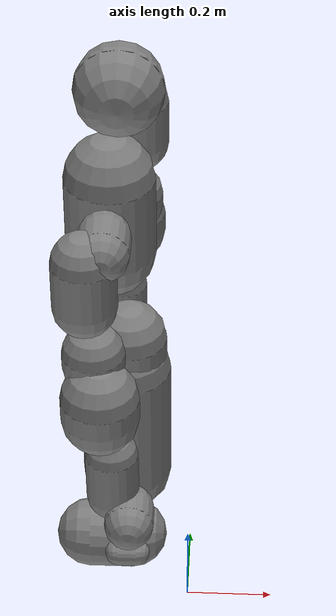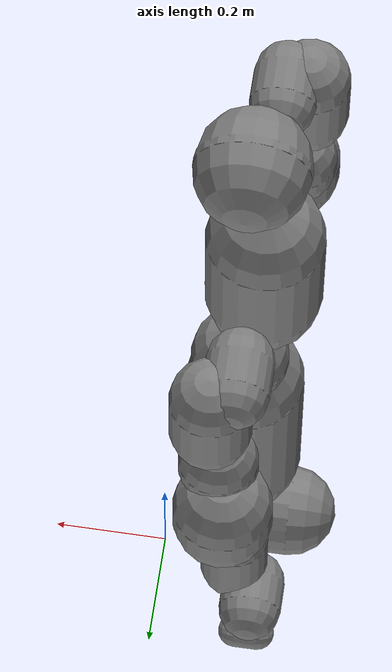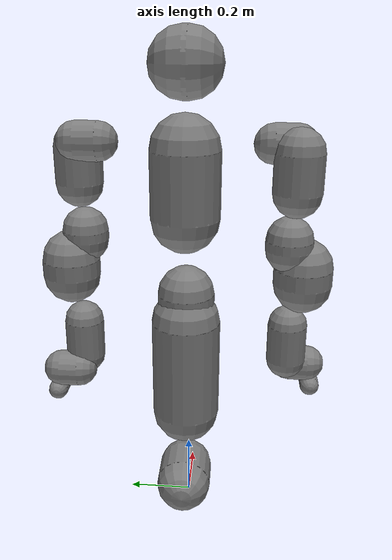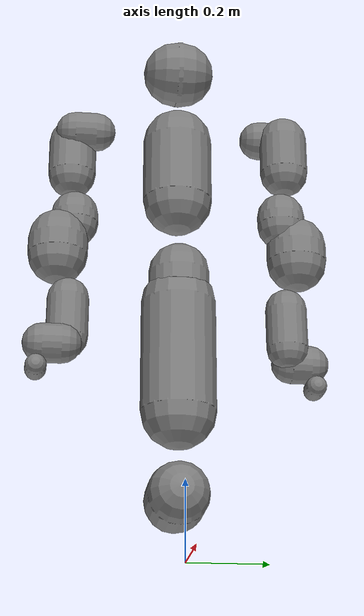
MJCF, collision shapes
<!-- Monte01 robot worldbody content for inclusion in scenes -->
<mujoco model="monte01">
  <!-- Asset definitions -->
  <asset>
    <material name="white" rgba="1 1 1 1"/>
    <material name="gray" rgba="0.753 0.753 0.753 1"/>
    <material name="black" rgba="0.149 0.149 0.149 1"/>
    <mesh name="base_link" file="monte_01/meshes/base_link.STL"/>
    <mesh name="base_link_gripper" file="monte_01/meshes/base_link_gripper.STL"/>
    <mesh name="left_wheel_link" file="monte_01/meshes/left_wheel_link.STL"/>
    <mesh name="right_wheel_link" file="monte_01/meshes/right_wheel_link.STL"/>
    <mesh name="back_wheel_link" file="monte_01/meshes/back_wheel_link.STL"/>
    <mesh name="leg_link" file="monte_01/meshes/leg_link.STL"/>
    <mesh name="hip_link" file="monte_01/meshes/hip_link.STL"/>
    <mesh name="chest_link" file="monte_01/meshes/chest_link.STL"/>
    <mesh name="head_pitch_link" file="monte_01/meshes/head_pitch_link.STL"/>
    <mesh name="left_arm_link_base" file="monte_01/meshes/left_arm_link_base.STL"/>
    <mesh name="arm_link1" file="monte_01/meshes/arm_link1.STL"/>
    <mesh name="arm_link2" file="monte_01/meshes/arm_link2.STL"/>
    <mesh name="arm_link3" file="monte_01/meshes/arm_link3.STL"/>
    <mesh name="arm_link4" file="monte_01/meshes/arm_link4.STL"/>
    <mesh name="arm_link5" file="monte_01/meshes/arm_link5.STL"/>
    <mesh name="arm_link6" file="monte_01/meshes/arm_link6.STL"/>
    <mesh name="left_arm_link_7" file="monte_01/meshes/left_arm_link_7.STL"/>
    <mesh name="right_arm_link_base" file="monte_01/meshes/right_arm_link_base.STL"/>
    <mesh name="right_arm_link_7" file="monte_01/meshes/right_arm_link_7.STL"/>
    <mesh name="hand_link" file="monte_01/meshes/hand_link.STL"/>
  </asset>

  <!-- Worldbody content -->
  <worldbody>
      <!-- Base platform body with proper inertial properties -->
  <body name="base_platform" pos="0 0 0">
    <inertial pos="0 0 0" mass="50" diaginertia="5 5 5"/>
    <geom type="mesh" contype="0" conaffinity="0" group="1" rgba="0.902 0.902 0.902 1" mesh="base_link"/>
    <!-- Collision geometry -->
    <geom type="capsule" size="0.0800 0.0481" pos="-0.1774 0.0000 0.2001" quat="0.707 0 0.707 0" rgba="0.5 0.5 0.5 0.3"/>
    <geom pos="0 0.26435 0" quat="0.707105 0.707108 0 0" type="mesh" contype="0" conaffinity="0" group="1" rgba="0.902 0.902 0.902 1" mesh="left_wheel_link"/>
    <geom pos="0 -0.26435 0" quat="0.707105 -0.707108 0 0" type="mesh" contype="0" conaffinity="0" group="1" rgba="0.902 0.902 0.902 1" mesh="right_wheel_link"/>
    <geom pos="-0.355 0.00025 0.0148" type="mesh" contype="0" conaffinity="0" group="1" rgba="0.902 0.902 0.902 1" mesh="back_wheel_link"/>
  </body>
  <body name="leg_link" pos="-0.15685 0 0.38203">
    <inertial pos="0.0245059 -0.00799219 0.174693" quat="0.705443 -0.049007 -0.0490354 0.705368" mass="3.28399" diaginertia="0.0350376 0.0341184 0.00475773"/>
    <joint name="body_joint_1" pos="0 0 0" axis="0 1 0" range="-1.3788 0.50615" class="stable_joint"/>
    <geom type="mesh" contype="0" conaffinity="0" group="1" rgba="0.902 0.902 0.902 1" mesh="leg_link"/>
    <!-- Collision geometry -->
    <geom type="capsule" size="0.0992 0.1483" pos="0.0190 0.0000 0.1806" rgba="0.5 0.5 0.5 0.3"/>
    <body name="hip_link" pos="0.05 0 0.35348">
      <inertial pos="-0.0241312 0.00886613 0.0419535" quat="0.572988 0.383287 0.359085 0.629154" mass="9.0897" diaginertia="0.0238406 0.01939 0.0157637"/>
      <joint name="body_joint_2" pos="0 0 0" axis="0 1 0" range="-0.50615 2.6005" class="stable_joint"/>
      <geom type="mesh" contype="0" conaffinity="0" group="1" rgba="0.902 0.902 0.902 1" mesh="hip_link"/>
      <!-- Collision geometry -->
      <geom type="capsule" size="0.0812 0.0215" pos="-0.0214 0.0000 0.0368" rgba="0.5 0.5 0.5 0.3"/>
      <body name="chest_link" pos="-0.05 0 0.49">
        <inertial pos="-0.0038589 0.000831105 -0.159919" quat="0.998725 0.00418036 0.0133576 0.0484987" mass="10.6506" diaginertia="0.0851562 0.0772272 0.0430473"/>
        <joint name="body_joint_3" pos="0 0 0" axis="0 0 -1" range="-1.2915 1.2915" class="stable_joint"/>
        <geom type="mesh" contype="0" conaffinity="0" group="1" rgba="0.902 0.902 0.902 1" mesh="chest_link"/>
        <!-- Collision geometry -->
        <geom type="capsule" size="0.0949 0.0905" pos="-0.0066 0.0000 -0.1096" rgba="0.5 0.5 0.5 0.3"/>
        <geom pos="0 0.025 0" quat="1 0 0 0" type="mesh" contype="0" conaffinity="0" group="1" rgba="0.3922 0.3529 1 1" mesh="left_arm_link_base"/>
        <geom pos="0 -0.025 0" quat="1 0 0 0" type="mesh" contype="0" conaffinity="0" group="1" rgba="0.3922 0.3529 1 1" mesh="right_arm_link_base"/>
        <body name="head_yaw_link" pos="-0.0065303 0 0.15766">
          <inertial pos="-5.78417e-05 -0.00454218 -0.0338959" quat="0.487598 0.87279 -0.0172294 -0.0137859" mass="0.442755" diaginertia="0.000126387 0.000116255 0.000114828"/>
          <joint name="head_joint_1" pos="0 0 0" axis="0 0 1" range="-1.55334 1.55334" class="head_joint"/>
          <body name="head_pitch_link">
            <inertial pos="0.0619108 -0.0007342 0.0254911" quat="0.620889 0.610002 -0.34213 0.336218" mass="0.315564" diaginertia="0.000299509 0.000271913 9.92176e-05"/>
            <joint name="head_joint_2" pos="0 0 0" axis="0 1 0" range="-0.418879 0.418879" class="head_joint"/>
            <geom type="mesh" contype="0" conaffinity="0" group="1" rgba="0.902 0.902 0.902 1" mesh="head_pitch_link"/>
            <!-- Collision geometry -->
            <geom type="capsule" size="0.0916 0.0065" pos="0.0232 0.0000 0.0329" quat="0.707 0.707 0 0" rgba="0.5 0.5 0.5 0.3"/>
          </body>
        </body>
        <body name="left_arm_link_1" pos="0.000127977 0.29087 -0.00113089" quat="-0.499265 0.500734 0.500175 0.499824">
          <inertial pos="-0.0042142 0.02821 -0.0087788" quat="0.917781 -0.277115 0.0606681 0.277858" mass="0.42603" diaginertia="0.00144551 0.00137757 0.000823511"/>
          <joint name="left_arm_joint_1" range="-6.28144 6.28144" class="arm_joint_heavy"/>
          <geom type="mesh" contype="0" conaffinity="0" group="1" rgba="0.902 0.902 0.902 1" mesh="arm_link1"/>
          <!-- Collision geometry -->
          <geom type="capsule" size="0.0533 0.0290" pos="-0.0000 0.0009 -0.0337" rgba="0.5 0.5 0.5 0.3"/>
          <body name="left_arm_link_2" pos="-0.00040317 4.81717e-06 -1.1089e-08" quat="0.49998 -0.500928 -0.500189 -0.4989">
            <inertial pos="-3.3178e-05 -0.12849 0.026337" quat="0.447793 0.894132 -0.00224061 0.00218314" mass="0.56095" diaginertia="0.00319151 0.00311598 0.000980804"/>
            <joint name="left_arm_joint_2" range="-0.471687 3.59545" class="arm_joint_heavy"/>
            <geom type="mesh" contype="0" conaffinity="0" group="1" rgba="0.902 0.902 0.902 1" mesh="arm_link2"/>
            <!-- Collision geometry -->
            <geom type="capsule" size="0.0650 0.0507" pos="-0.0000 -0.0671 0.0370" quat="0.707 0.707 0 0" rgba="0.5 0.5 0.5 0.3"/>
            <body name="left_arm_link_3" pos="0.00061189 -0.292495 -0.000980908" quat="0.499245 0.500922 -0.500753 0.499077">
              <inertial pos="0.04223 -0.023258 -0.0096674" quat="0.883205 0.339803 0.323238 0.000542237" mass="0.44463" diaginertia="0.00133227 0.00119126 0.000780475"/>
              <joint name="left_arm_joint_3" range="-7.81898 4.67748" class="arm_joint_medium"/>
              <geom type="mesh" contype="0" conaffinity="0" group="1" rgba="0.902 0.902 0.902 1" mesh="arm_link3"/>
              <!-- Collision geometry -->
              <geom type="capsule" size="0.0640 0.0132" pos="0.0262 0.0113 -0.0327" rgba="0.5 0.5 0.5 0.3"/>
              <body name="left_arm_link_4" pos="0.0520853 0.00107756 3.37622e-06" quat="0.00110785 -0.00110785 -0.708067 0.706143">
                <inertial pos="0.067148 -0.10732 0.024479" quat="0.0654142 0.483317 -0.738663 0.465298" mass="0.52387" diaginertia="0.00288984 0.00282705 0.000894409"/>
                <joint name="left_arm_joint_4" range="-3.10643 0.750365" class="arm_joint_medium"/>
                <geom type="mesh" contype="0" conaffinity="0" group="1" rgba="0.902 0.902 0.902 1" mesh="arm_link4"/>
                <!-- Collision geometry -->
                <geom type="capsule" size="0.0803 0.0232" pos="0.0391 -0.0589 0.0320" quat="0.707 0.707 0 0" rgba="0.5 0.5 0.5 0.3"/>
                <body name="left_arm_link_5" pos="0.0756306 -0.342383 0.00185931" quat="0.501854 0.499709 -0.497571 0.500856">
                  <inertial pos="-0.00023397 0.036705 -0.080064" quat="0.981064 -0.19003 0.00637998 0.0369004" mass="0.18554" diaginertia="0.00099553 0.000988613 0.000247126"/>
                  <joint name="left_arm_joint_5" range="-7.82063 4.67745" class="arm_joint_medium"/>
                  <geom type="mesh" contype="0" conaffinity="0" group="1" rgba="0.902 0.902 0.902 1" mesh="arm_link5"/>
                  <!-- Collision geometry -->
                  <geom type="capsule" size="0.0553 0.0548" pos="0.0000 0.0206 -0.0716" rgba="0.5 0.5 0.5 0.3"/>
                  <body name="left_arm_link_6" pos="0.000937545 -0.0036436 -6.98052e-05" quat="0.700299 0.713849 -0.00105634 -0.000255129">
                    <inertial pos="0.058911 0.028469 0.0068428" quat="-0.188705 0.793535 0.166088 0.554173" mass="0.31344" diaginertia="0.000827892 0.000768871 0.000386708"/>
                    <joint name="left_arm_joint_6" range="-1.69122 2.87297" class="arm_joint_light"/>
                    <geom type="mesh" contype="0" conaffinity="0" group="1" rgba="0.902 0.902 0.902 1" mesh="arm_link6"/>
                    <!-- Collision geometry -->
                    <geom type="capsule" size="0.0514 0.0254" pos="0.0381 0.0144 0.0109" quat="0.707 0 0.707 0" rgba="0.5 0.5 0.5 0.3"/>
                    <body name="left_arm_link_7" pos="0.0761231 0.0966977 -0.00156838" quat="0.503784 0.495446 0.496095 -0.504604">
                      <inertial pos="-0.000560743 -0.000236717 -0.0436157" quat="0.707378 -0.0122802 -0.0127115 0.706615" mass="1.73521" diaginertia="0.0041315 0.00350447 0.00130611"/>
                      <joint name="left_arm_joint_7" range="-6.28144 6.28144" class="arm_joint_light"/>
                      <geom type="mesh" contype="0" conaffinity="0" group="1" rgba="0.3922 0.3529 1 1" mesh="left_arm_link_7"/>
                      <!-- Collision geometry for left arm -->
                      <geom type="capsule" size="0.0277 0.0188" pos="-0.0075 0.0000 0.0165" quat="0.707 0 0.707 0" rgba="0.5 0.5 0.5 0.3"/>
                      <site name="left_gripper_attachment" pos="0 0 0" quat="0 1 0 0"/>
                    </body>
                  </body>
                </body>
              </body>
            </body>
          </body>
        </body>
        <body name="right_arm_link_1" pos="-0.000119545 -0.290503 -0.00140256" quat="0.499931 0.500068 -0.500981 0.499018">
          <inertial pos="-0.0042142 0.02821 -0.0087788" quat="0.917781 -0.277115 0.0606681 0.277858" mass="0.42603" diaginertia="0.00144551 0.00137757 0.000823511"/>
          <joint name="right_arm_joint_1" range="-6.28144 6.28144" class="arm_joint_heavy"/>
          <geom type="mesh" contype="0" conaffinity="0" group="1" rgba="0.902 0.902 0.902 1" mesh="arm_link1"/>
          <!-- Collision geometry -->
          <geom type="capsule" size="0.0533 0.0290" pos="-0.0000 0.0009 -0.0337" rgba="0.5 0.5 0.5 0.3"/>
          <body name="right_arm_link_2" pos="0.00018849 4.00533e-05 -2.299e-07" quat="0.499144 -0.501901 -0.500968 -0.497978">
            <inertial pos="-3.3178e-05 -0.12849 0.026337" quat="0.447793 0.894132 -0.00224061 0.00218314" mass="0.56095" diaginertia="0.00319151 0.00311598 0.000980804"/>
            <joint name="right_arm_joint_2" range="-0.471687 3.59545" class="arm_joint_heavy"/>
            <geom type="mesh" contype="0" conaffinity="0" group="1" rgba="0.902 0.902 0.902 1" mesh="arm_link2"/>
            <!-- Collision geometry -->
            <geom type="capsule" size="0.0650 0.0507" pos="-0.0000 -0.0671 0.0370" quat="0.707 0.707 0 0" rgba="0.5 0.5 0.5 0.3"/>
            <body name="right_arm_link_3" pos="0.000110741 -0.292526 -0.00168114" quat="0.498311 0.501795 -0.501074 0.498811">
              <inertial pos="0.04223 -0.023258 -0.0096674" quat="0.883205 0.339803 0.323238 0.000542237" mass="0.44463" diaginertia="0.00133227 0.00119126 0.000780475"/>
              <joint name="right_arm_joint_3" range="-7.81908 4.67748" class="arm_joint_medium"/>
              <geom type="mesh" contype="0" conaffinity="0" group="1" rgba="0.902 0.902 0.902 1" mesh="arm_link3"/>
              <!-- Collision geometry -->
              <geom type="capsule" size="0.0640 0.0132" pos="0.0262 0.0113 -0.0327" rgba="0.5 0.5 0.5 0.3"/>
              <body name="right_arm_link_4" pos="0.052001 0.00080659 4.08215e-06" quat="0.00184333 -0.00270193 -0.708364 0.70584">
                <inertial pos="0.067148 -0.10732 0.024479" quat="0.0654142 0.483317 -0.738663 0.465298" mass="0.52387" diaginertia="0.00288984 0.00282705 0.000894409"/>
                <joint name="right_arm_joint_4" range="-3.2114 0.750476" class="arm_joint_medium"/>
                <geom type="mesh" contype="0" conaffinity="0" group="1" rgba="0.902 0.902 0.902 1" mesh="arm_link4"/>
                <!-- Collision geometry -->
                <geom type="capsule" size="0.0803 0.0232" pos="0.0391 -0.0589 0.0320" quat="0.707 0.707 0 0" rgba="0.5 0.5 0.5 0.3"/>
                <body name="right_arm_link_5" pos="0.0770178 -0.341838 -0.000191496" quat="0.500546 0.502664 -0.497603 0.499174">
                  <inertial pos="-0.00023397 0.036705 -0.080064" quat="0.981064 -0.19003 0.00637998 0.0369004" mass="0.18554" diaginertia="0.00099553 0.000988613 0.000247126"/>
                  <joint name="right_arm_joint_5" range="-7.8191 4.67748" class="arm_joint_medium"/>
                  <geom type="mesh" contype="0" conaffinity="0" group="1" rgba="0.902 0.902 0.902 1" mesh="arm_link5"/>
                  <!-- Collision geometry -->
                  <geom type="capsule" size="0.0553 0.0548" pos="0.0000 0.0206 -0.0716" rgba="0.5 0.5 0.5 0.3"/>
                  <body name="right_arm_link_6" pos="0.000155265 -0.00361337 -6.4194e-05" quat="0.700798 0.713358 -0.0016632 0.000951125">
                    <inertial pos="0.058911 0.028469 0.0068428" quat="-0.188705 0.793535 0.166088 0.554173" mass="0.31344" diaginertia="0.000827892 0.000768871 0.000386708"/>
                    <joint name="right_arm_joint_6" range="-1.69122 2.81173" class="arm_joint_light"/>
                    <geom type="mesh" contype="0" conaffinity="0" group="1" rgba="0.902 0.902 0.902 1" mesh="arm_link6"/>
                    <!-- Collision geometry -->
                    <geom type="capsule" size="0.0514 0.0254" pos="0.0381 0.0144 0.0109" quat="0.707 0 0.707 0" rgba="0.5 0.5 0.5 0.3"/>
                    <body name="right_arm_link_7" pos="0.0770371 0.0959785 -0.00181105" quat="0.505361 0.494828 -0.494756 0.504947">
                      <inertial pos="0.00112135 -0.000230969 -0.0436157" quat="0.706898 0.0147814 0.0144714 0.707013" mass="1.73521" diaginertia="0.00412987 0.00350549 0.00130346"/>
                      <joint name="right_arm_joint_7" range="-6.24825 6.24825" class="arm_joint_light"/>
                      <geom type="mesh" contype="0" conaffinity="0" group="1" rgba="0.3922 0.3529 1 1" mesh="right_arm_link_7"/>
                      <!-- Collision geometry for right arm -->
                      <geom type="capsule" size="0.0277 0.0188" pos="0.0075 0.0000 0.0165" quat="0.707 0 0.707 0" rgba="0.5 0.5 0.5 0.3"/>
                      <site name="right_gripper_attachment" pos="0 0 0" quat="0 1 0 0"/>
                    </body>
                  </body>
                </body>
              </body>
            </body>
          </body>
        </body>
      </body>
    </body>
  </body>
  </worldbody>

  <!-- Actuator definitions -->
  <actuator>
    <position name="body_joint_1_ctrl" joint="body_joint_1" ctrlrange="-1.3788 0.50615" kp="8000" dampratio="1.0" />
    <position name="body_joint_2_ctrl" joint="body_joint_2" ctrlrange="-0.50615 2.6005" kp="6000" dampratio="1.0" />
    <position name="body_joint_3_ctrl" joint="body_joint_3" ctrlrange="-1.2915 1.2915" kp="4000" dampratio="1.0" />
    <position name="head_joint_1_ctrl" joint="head_joint_1" ctrlrange="-1.553343034 1.553343034" kp="500" />
    <position name="head_joint_2_ctrl" joint="head_joint_2" ctrlrange="-0.41887902 0.41887902" kp="500" />
    <position name="left_arm_joint_1_ctrl" joint="left_arm_joint_1" ctrlrange="-6.281439781188965 6.281439781188965" kp="1500" />
    <position name="left_arm_joint_2_ctrl" joint="left_arm_joint_2" ctrlrange="-0.47168713768005377 3.595448434753418" kp="1500" />
    <position name="left_arm_joint_3_ctrl" joint="left_arm_joint_3" ctrlrange="-7.818976819915772 4.67748266418457" kp="1200" />
    <position name="left_arm_joint_4_ctrl" joint="left_arm_joint_4" ctrlrange="-3.1064263031446933 0.7503646604156495" kp="1200" />
    <position name="left_arm_joint_5_ctrl" joint="left_arm_joint_5" ctrlrange="-7.820627630157471 4.677452146606445" kp="1000" />
    <position name="left_arm_joint_6_ctrl" joint="left_arm_joint_6" ctrlrange="-1.6912236213684082 2.872974157333374" kp="1000" />
    <position name="left_arm_joint_7_ctrl" joint="left_arm_joint_7" ctrlrange="-6.281439781188965 6.281439781188965" kp="1000" />
    <position name="right_arm_joint_1_ctrl" joint="right_arm_joint_1" ctrlrange="-6.281439781188965 6.281439781188965" kp="1500" />
    <position name="right_arm_joint_2_ctrl" joint="right_arm_joint_2" ctrlrange="-0.47168713768005377 3.595448434753418" kp="1500" />
    <position name="right_arm_joint_3_ctrl" joint="right_arm_joint_3" ctrlrange="-7.819076478881836 4.67748266418457" kp="1200" />
    <position name="right_arm_joint_4_ctrl" joint="right_arm_joint_4" ctrlrange="-3.211403385605812 0.75047600189209" kp="1200" />
    <position name="right_arm_joint_5_ctrl" joint="right_arm_joint_5" ctrlrange="-7.81909936706543 4.6774769421386715" kp="1000" />
    <position name="right_arm_joint_6_ctrl" joint="right_arm_joint_6" ctrlrange="-1.6912236213684082 2.811725378036499" kp="1000" />
    <position name="right_arm_joint_7_ctrl" joint="right_arm_joint_7" ctrlrange="-6.248254776000977 6.248254776000977" kp="1000" />
    <!-- 添加重力补偿器 -->
    <motor name="body_joint_1_gravity_comp" joint="body_joint_1" gear="150" />
    <motor name="body_joint_2_gravity_comp" joint="body_joint_2" gear="80" />
  </actuator>

  <!-- Keyframe definitions -->
  <keyframe>
    <key name="robot_home" qpos="-0.39 1.02 0 0 0 0.6265732 1.64933479 -1.2618717 -1.65806019 -6.30063725 1.58824956 0.32637656 -1.484266996383667 2.322235584259033 -1.3403406143188477 -2.110537052154541 -3.470266342163086 1.7113285064697266 0.9290168285369873" />
  </keyframe>
</mujoco>
